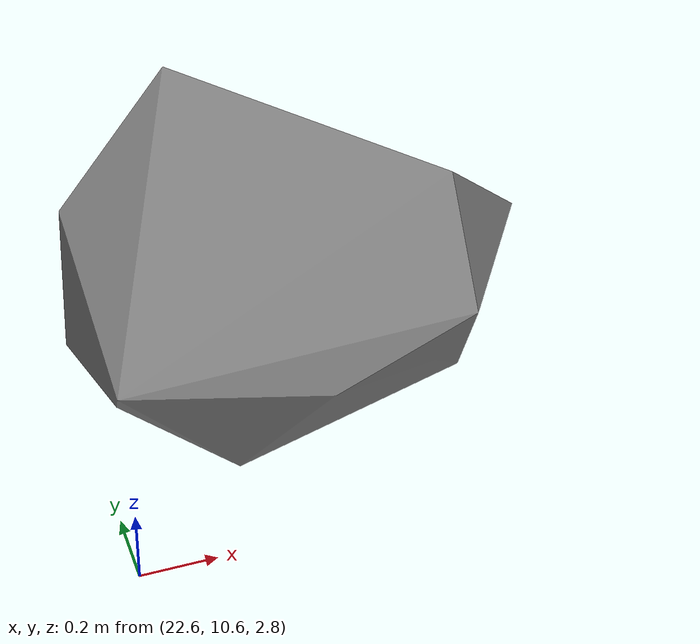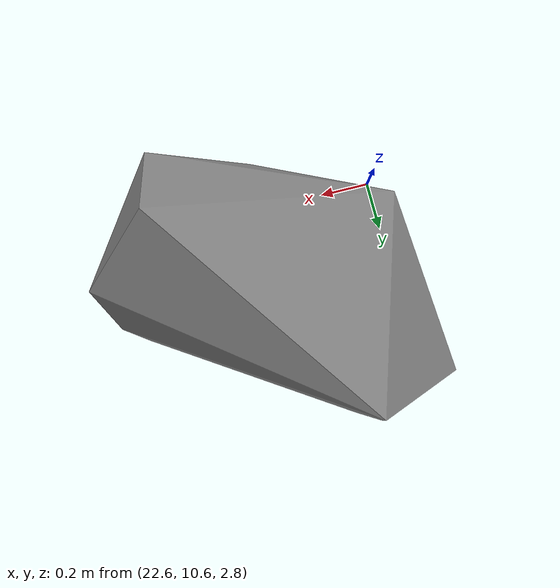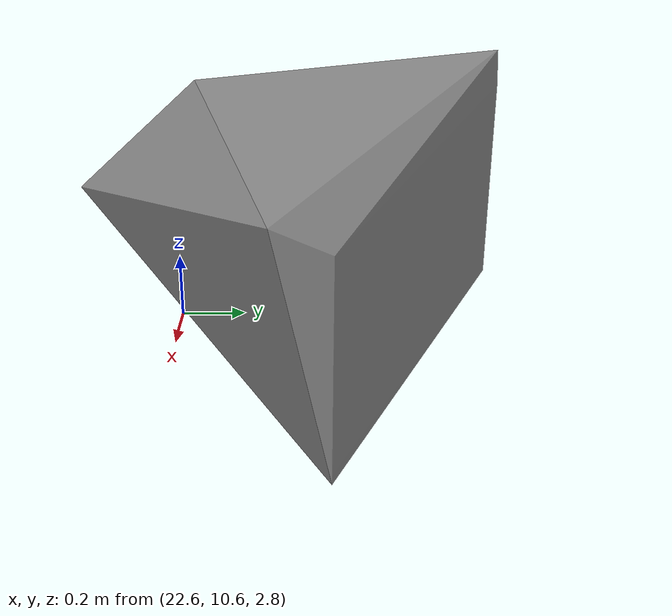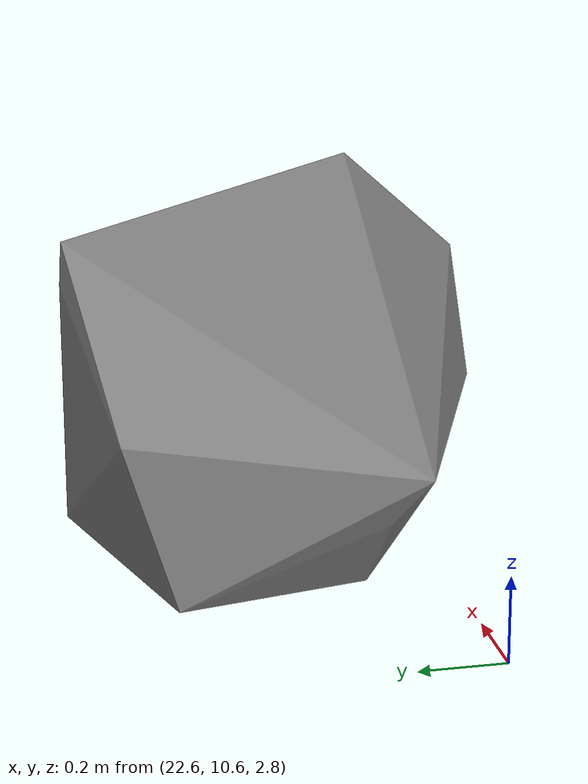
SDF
<sdf version="1.8">
 <model name="blue_mountains">
  <static>true</static>
  <link name="forest_22_21">
   <collision name="tree_15_trunk">
    <pose>23.24704 11.32184 1.727955 0 0 0.9336148</pose>
    <geometry><cylinder><radius>0.04460322</radius><length>2.380011</length></cylinder></geometry>
   </collision>
   <collision name="plant_15_crown_0">
    <pose>23.23643 11.3075 0.5379493 0 0 0.9336148</pose>
    <geometry>
     <mesh>
      <uri>model://blue_mountains/meshes/canopy_7_0.dae</uri>
      <scale>0.1784129 0.1784129 0.1789443</scale>
     </mesh>
    </geometry>
   </collision>
   <collision name="plant_15_crown_1">
    <pose>23.23643 11.3075 0.5379493 0 0 0.9336148</pose>
    <geometry>
     <mesh>
      <uri>model://blue_mountains/meshes/canopy_7_1.dae</uri>
      <scale>0.1784129 0.1784129 0.1789443</scale>
     </mesh>
    </geometry>
   </collision>
   <collision name="tree_48_trunk">
    <pose>24.43562 14.63396 3.438689 0 0 -0.2100108</pose>
    <geometry><cylinder><radius>0.0592083</radius><length>3.419819</length></cylinder></geometry>
   </collision>
   <collision name="plant_48_crown_0">
    <pose>24.41246 14.6389 1.728779 0 0 -0.2100108</pose>
    <geometry>
     <mesh>
      <uri>model://blue_mountains/meshes/canopy_5_0.dae</uri>
      <scale>0.2368332 0.2368332 0.2570491</scale>
     </mesh>
    </geometry>
   </collision>
   <collision name="plant_48_crown_1">
    <pose>24.41246 14.6389 1.728779 0 0 -0.2100108</pose>
    <geometry>
     <mesh>
      <uri>model://blue_mountains/meshes/canopy_5_1.dae</uri>
      <scale>0.2368332 0.2368332 0.2570491</scale>
     </mesh>
    </geometry>
   </collision>
   <collision name="tree_55_trunk">
    <pose>23.61439 14.39623 2.601551 0 0 2.288203</pose>
    <geometry><cylinder><radius>0.04146306</radius><length>1.92313</length></cylinder></geometry>
   </collision>
   <collision name="plant_55_crown_0">
    <pose>23.6253 14.38374 1.639987 0 0 2.288203</pose>
    <geometry>
     <mesh>
      <uri>model://blue_mountains/meshes/canopy_3_0.dae</uri>
      <scale>0.1658523 0.1658523 0.1429757</scale>
     </mesh>
    </geometry>
   </collision>
   <collision name="plant_55_crown_1">
    <pose>23.6253 14.38374 1.639987 0 0 2.288203</pose>
    <geometry>
     <mesh>
      <uri>model://blue_mountains/meshes/canopy_3_1.dae</uri>
      <scale>0.1658523 0.1658523 0.1429757</scale>
     </mesh>
    </geometry>
   </collision>
   <collision name="tree_65_trunk">
    <pose>22.29597 16.54191 4.357706 0 0 0.1492017</pose>
    <geometry><cylinder><radius>0.06292797</radius><length>3.44075</length></cylinder></geometry>
   </collision>
   <collision name="plant_65_crown_0">
    <pose>22.27108 16.53817 2.637331 0 0 0.1492017</pose>
    <geometry>
     <mesh>
      <uri>model://blue_mountains/meshes/canopy_3_0.dae</uri>
      <scale>0.2517119 0.2517119 0.2558038</scale>
     </mesh>
    </geometry>
   </collision>
   <collision name="plant_65_crown_1">
    <pose>22.27108 16.53817 2.637331 0 0 0.1492017</pose>
    <geometry>
     <mesh>
      <uri>model://blue_mountains/meshes/canopy_3_1.dae</uri>
      <scale>0.2517119 0.2517119 0.2558038</scale>
     </mesh>
    </geometry>
   </collision>
   <collision name="tree_67_trunk">
    <pose>24.13555 16.33714 3.410135 0 0 -2.203714</pose>
    <geometry><cylinder><radius>0.03518588</radius><length>1.92325</length></cylinder></geometry>
   </collision>
   <collision name="plant_67_crown_0">
    <pose>24.14387 16.34849 2.44851 0 0 -2.203714</pose>
    <geometry>
     <mesh>
      <uri>model://blue_mountains/meshes/canopy_1_0.dae</uri>
      <scale>0.1407435 0.1407435 0.1420528</scale>
     </mesh>
    </geometry>
   </collision>
   <collision name="plant_67_crown_1">
    <pose>24.14387 16.34849 2.44851 0 0 -2.203714</pose>
    <geometry>
     <mesh>
      <uri>model://blue_mountains/meshes/canopy_1_1.dae</uri>
      <scale>0.1407435 0.1407435 0.1420528</scale>
     </mesh>
    </geometry>
   </collision>
   <collision name="tree_117_trunk">
    <pose>29.77208 17.07656 4.243678 0 0 0.5113169</pose>
    <geometry><cylinder><radius>0.06238858</radius><length>3.967118</length></cylinder></geometry>
   </collision>
   <collision name="plant_117_crown_0">
    <pose>29.75032 17.06435 2.260119 0 0 0.5113169</pose>
    <geometry>
     <mesh>
      <uri>model://blue_mountains/meshes/canopy_2_0.dae</uri>
      <scale>0.2495543 0.2495543 0.2918822</scale>
     </mesh>
    </geometry>
   </collision>
   <collision name="plant_117_crown_1">
    <pose>29.75032 17.06435 2.260119 0 0 0.5113169</pose>
    <geometry>
     <mesh>
      <uri>model://blue_mountains/meshes/canopy_2_1.dae</uri>
      <scale>0.2495543 0.2495543 0.2918822</scale>
     </mesh>
    </geometry>
   </collision>
   <collision name="tree_139_trunk">
    <pose>23.24105 14.60842 2.591089 0 0 1.887959</pose>
    <geometry><cylinder><radius>0.03634335</radius><length>1.714925</length></cylinder></geometry>
   </collision>
   <collision name="plant_139_crown_0">
    <pose>23.24558 14.59461 1.733626 0 0 1.887959</pose>
    <geometry>
     <mesh>
      <uri>model://blue_mountains/meshes/canopy_0_0.dae</uri>
      <scale>0.1453734 0.1453734 0.1264747</scale>
     </mesh>
    </geometry>
   </collision>
   <collision name="plant_139_crown_1">
    <pose>23.24558 14.59461 1.733626 0 0 1.887959</pose>
    <geometry>
     <mesh>
      <uri>model://blue_mountains/meshes/canopy_0_1.dae</uri>
      <scale>0.1453734 0.1453734 0.1264747</scale>
     </mesh>
    </geometry>
   </collision>
   <collision name="tree_215_trunk">
    <pose>29.53932 13.00813 2.388072 0 0 -2.60572</pose>
    <geometry><cylinder><radius>0.0496179</radius><length>2.490408</length></cylinder></geometry>
   </collision>
   <collision name="plant_215_crown_0">
    <pose>29.55639 13.01827 1.142869 0 0 -2.60572</pose>
    <geometry>
     <mesh>
      <uri>model://blue_mountains/meshes/canopy_8_0.dae</uri>
      <scale>0.1984716 0.1984716 0.1853087</scale>
     </mesh>
    </geometry>
   </collision>
   <collision name="plant_215_crown_1">
    <pose>29.55639 13.01827 1.142869 0 0 -2.60572</pose>
    <geometry>
     <mesh>
      <uri>model://blue_mountains/meshes/canopy_8_1.dae</uri>
      <scale>0.1984716 0.1984716 0.1853087</scale>
     </mesh>
    </geometry>
   </collision>
   <collision name="tree_233_trunk">
    <pose>27.22441 17.87721 4.243077 0 0 -2.088084</pose>
    <geometry><cylinder><radius>0.05845039</radius><length>2.865823</length></cylinder></geometry>
   </collision>
   <collision name="plant_233_crown_0">
    <pose>27.23597 17.89753 2.810165 0 0 -2.088084</pose>
    <geometry>
     <mesh>
      <uri>model://blue_mountains/meshes/canopy_1_0.dae</uri>
      <scale>0.2338015 0.2338015 0.2116721</scale>
     </mesh>
    </geometry>
   </collision>
   <collision name="plant_233_crown_1">
    <pose>27.23597 17.89753 2.810165 0 0 -2.088084</pose>
    <geometry>
     <mesh>
      <uri>model://blue_mountains/meshes/canopy_1_1.dae</uri>
      <scale>0.2338015 0.2338015 0.2116721</scale>
     </mesh>
    </geometry>
   </collision>
   <collision name="tree_332_trunk">
    <pose>23.27227 15.43897 3.556959 0 0 -2.471352</pose>
    <geometry><cylinder><radius>0.05468386</radius><length>2.918053</length></cylinder></geometry>
   </collision>
   <collision name="plant_332_crown_0">
    <pose>23.28941 15.45256 2.097933 0 0 -2.471352</pose>
    <geometry>
     <mesh>
      <uri>model://blue_mountains/meshes/canopy_2_0.dae</uri>
      <scale>0.2187354 0.2187354 0.2146968</scale>
     </mesh>
    </geometry>
   </collision>
   <collision name="plant_332_crown_1">
    <pose>23.28941 15.45256 2.097933 0 0 -2.471352</pose>
    <geometry>
     <mesh>
      <uri>model://blue_mountains/meshes/canopy_2_1.dae</uri>
      <scale>0.2187354 0.2187354 0.2146968</scale>
     </mesh>
    </geometry>
   </collision>
   <collision name="tree_377_trunk">
    <pose>29.08733 18.25112 4.606423 0 0 1.923825</pose>
    <geometry><cylinder><radius>0.06338961</radius><length>3.860888</length></cylinder></geometry>
   </collision>
   <collision name="plant_377_crown_0">
    <pose>29.0961 18.22733 2.675979 0 0 1.923825</pose>
    <geometry>
     <mesh>
      <uri>model://blue_mountains/meshes/canopy_3_0.dae</uri>
      <scale>0.2535585 0.2535585 0.2870391</scale>
     </mesh>
    </geometry>
   </collision>
   <collision name="plant_377_crown_1">
    <pose>29.0961 18.22733 2.675979 0 0 1.923825</pose>
    <geometry>
     <mesh>
      <uri>model://blue_mountains/meshes/canopy_3_1.dae</uri>
      <scale>0.2535585 0.2535585 0.2870391</scale>
     </mesh>
    </geometry>
   </collision>
   <collision name="tree_381_trunk">
    <pose>27.53591 16.74164 4.483071 0 0 2.352457</pose>
    <geometry><cylinder><radius>0.06756584</radius><length>4.213725</length></cylinder></geometry>
   </collision>
   <collision name="plant_381_crown_0">
    <pose>27.55495 16.72246 2.376208 0 0 2.352457</pose>
    <geometry>
     <mesh>
      <uri>model://blue_mountains/meshes/canopy_3_0.dae</uri>
      <scale>0.2702634 0.2702634 0.3132709</scale>
     </mesh>
    </geometry>
   </collision>
   <collision name="plant_381_crown_1">
    <pose>27.55495 16.72246 2.376208 0 0 2.352457</pose>
    <geometry>
     <mesh>
      <uri>model://blue_mountains/meshes/canopy_3_1.dae</uri>
      <scale>0.2702634 0.2702634 0.3132709</scale>
     </mesh>
    </geometry>
   </collision>
   <collision name="tree_400_trunk">
    <pose>26.20152 15.10039 3.034021 0 0 2.532992</pose>
    <geometry><cylinder><radius>0.03741042</radius><length>2.341069</length></cylinder></geometry>
   </collision>
   <collision name="plant_400_crown_0">
    <pose>26.2138 15.09183 1.863487 0 0 2.532992</pose>
    <geometry>
     <mesh>
      <uri>model://blue_mountains/meshes/canopy_1_0.dae</uri>
      <scale>0.1496417 0.1496417 0.1729133</scale>
     </mesh>
    </geometry>
   </collision>
   <collision name="plant_400_crown_1">
    <pose>26.2138 15.09183 1.863487 0 0 2.532992</pose>
    <geometry>
     <mesh>
      <uri>model://blue_mountains/meshes/canopy_1_1.dae</uri>
      <scale>0.1496417 0.1496417 0.1729133</scale>
     </mesh>
    </geometry>
   </collision>
   <collision name="tree_429_trunk">
    <pose>26.8209 16.29748 3.682782 0 0 -0.0488146</pose>
    <geometry><cylinder><radius>0.0513389</radius><length>2.806364</length></cylinder></geometry>
   </collision>
   <collision name="plant_429_crown_0">
    <pose>26.80038 16.29848 2.2796 0 0 -0.0488146</pose>
    <geometry>
     <mesh>
      <uri>model://blue_mountains/meshes/canopy_2_0.dae</uri>
      <scale>0.2053556 0.2053556 0.2064793</scale>
     </mesh>
    </geometry>
   </collision>
   <collision name="plant_429_crown_1">
    <pose>26.80038 16.29848 2.2796 0 0 -0.0488146</pose>
    <geometry>
     <mesh>
      <uri>model://blue_mountains/meshes/canopy_2_1.dae</uri>
      <scale>0.2053556 0.2053556 0.2064793</scale>
     </mesh>
    </geometry>
   </collision>
   <collision name="tree_432_trunk">
    <pose>26.3083 12.32599 2.041538 0 0 -1.991051</pose>
    <geometry><cylinder><radius>0.0421336</radius><length>2.239189</length></cylinder></geometry>
   </collision>
   <collision name="plant_432_crown_0">
    <pose>26.31517 12.34138 0.9219432 0 0 -1.991051</pose>
    <geometry>
     <mesh>
      <uri>model://blue_mountains/meshes/canopy_1_0.dae</uri>
      <scale>0.1685344 0.1685344 0.1653883</scale>
     </mesh>
    </geometry>
   </collision>
   <collision name="plant_432_crown_1">
    <pose>26.31517 12.34138 0.9219432 0 0 -1.991051</pose>
    <geometry>
     <mesh>
      <uri>model://blue_mountains/meshes/canopy_1_1.dae</uri>
      <scale>0.1685344 0.1685344 0.1653883</scale>
     </mesh>
    </geometry>
   </collision>
   <collision name="tree_434_trunk">
    <pose>21.56013 12.11643 2.031547 0 0 1.284538</pose>
    <geometry><cylinder><radius>0.05039553</radius><length>2.4471</length></cylinder></geometry>
   </collision>
   <collision name="plant_434_crown_0">
    <pose>21.55444 12.09709 0.8079967 0 0 1.284538</pose>
    <geometry>
     <mesh>
      <uri>model://blue_mountains/meshes/canopy_5_0.dae</uri>
      <scale>0.2015821 0.2015821 0.1839352</scale>
     </mesh>
    </geometry>
   </collision>
   <collision name="plant_434_crown_1">
    <pose>21.55444 12.09709 0.8079967 0 0 1.284538</pose>
    <geometry>
     <mesh>
      <uri>model://blue_mountains/meshes/canopy_5_1.dae</uri>
      <scale>0.2015821 0.2015821 0.1839352</scale>
     </mesh>
    </geometry>
   </collision>
   <collision name="tree_447_trunk">
    <pose>28.62643 15.73276 3.98391 0 0 0.8162263</pose>
    <geometry><cylinder><radius>0.06281054</radius><length>4.015818</length></cylinder></geometry>
   </collision>
   <collision name="plant_447_crown_0">
    <pose>28.60922 15.71446 1.976001 0 0 0.8162263</pose>
    <geometry>
     <mesh>
      <uri>model://blue_mountains/meshes/canopy_2_0.dae</uri>
      <scale>0.2512422 0.2512422 0.2954653</scale>
     </mesh>
    </geometry>
   </collision>
   <collision name="plant_447_crown_1">
    <pose>28.60922 15.71446 1.976001 0 0 0.8162263</pose>
    <geometry>
     <mesh>
      <uri>model://blue_mountains/meshes/canopy_2_1.dae</uri>
      <scale>0.2512422 0.2512422 0.2954653</scale>
     </mesh>
    </geometry>
   </collision>
   <collision name="plant_527_crown_0">
    <pose>20.94619 19.54805 4.660625 0 0 0</pose>
    <geometry>
     <mesh>
      <uri>model://blue_mountains/meshes/canopy_13_0.dae</uri>
      <scale>0.07575656 0.07575656 0.06926315</scale>
     </mesh>
    </geometry>
   </collision>
   <collision name="plant_527_crown_1">
    <pose>20.94619 19.54805 4.660625 0 0 0</pose>
    <geometry>
     <mesh>
      <uri>model://blue_mountains/meshes/canopy_13_1.dae</uri>
      <scale>0.07575656 0.07575656 0.06926315</scale>
     </mesh>
    </geometry>
   </collision>
   <visual name="forest_visual">
    <geometry><mesh><uri>model://blue_mountains/meshes/forest_22_21.dae</uri></mesh></geometry>
    <cast_shadows>false</cast_shadows>
   </visual>
  </link>
 </model>
</sdf>
